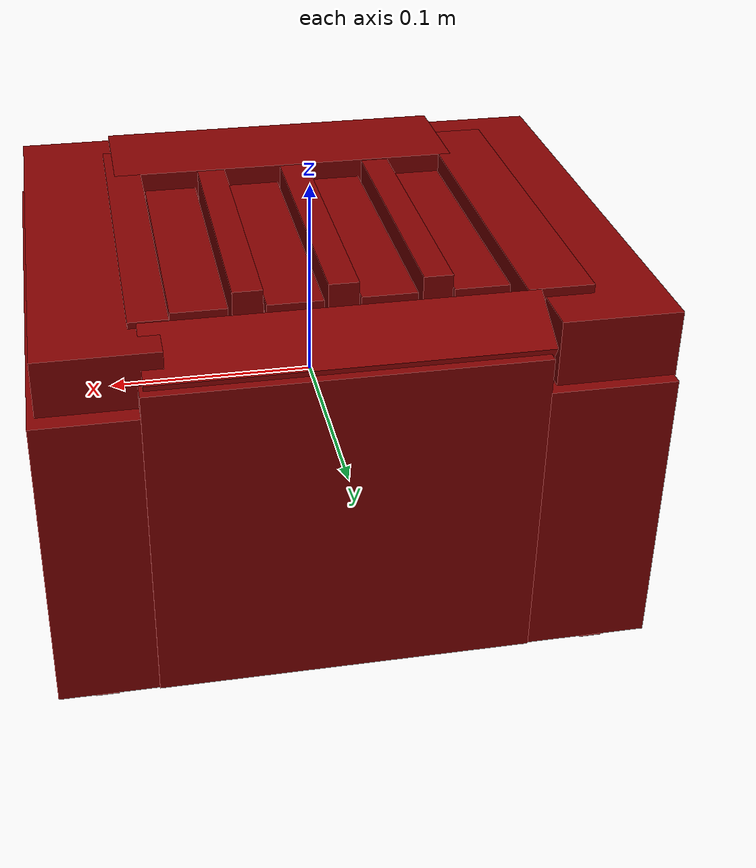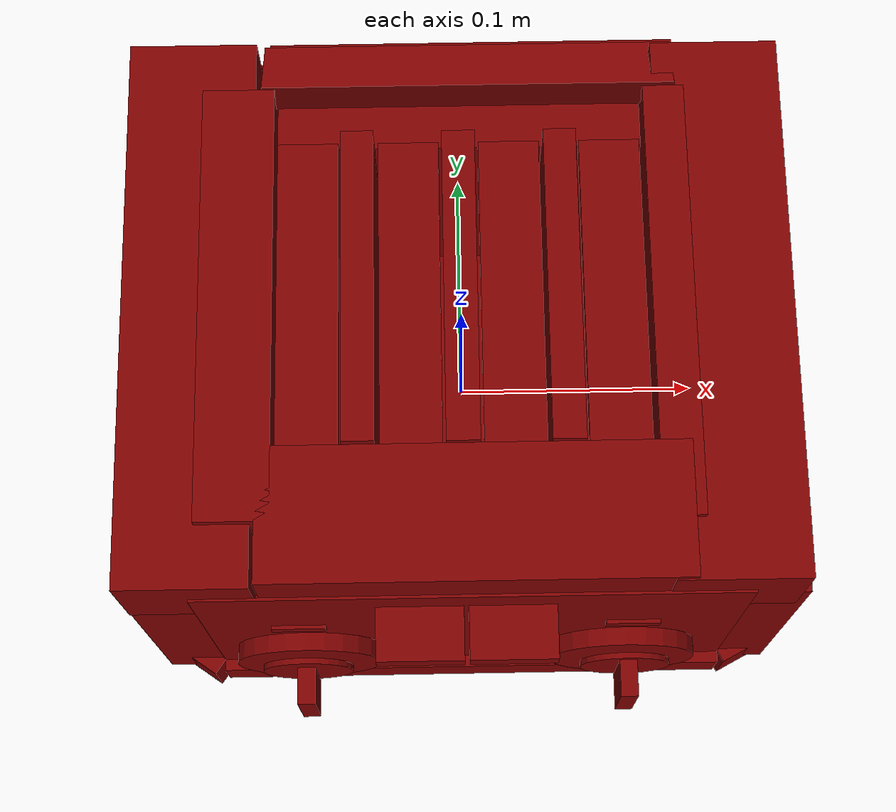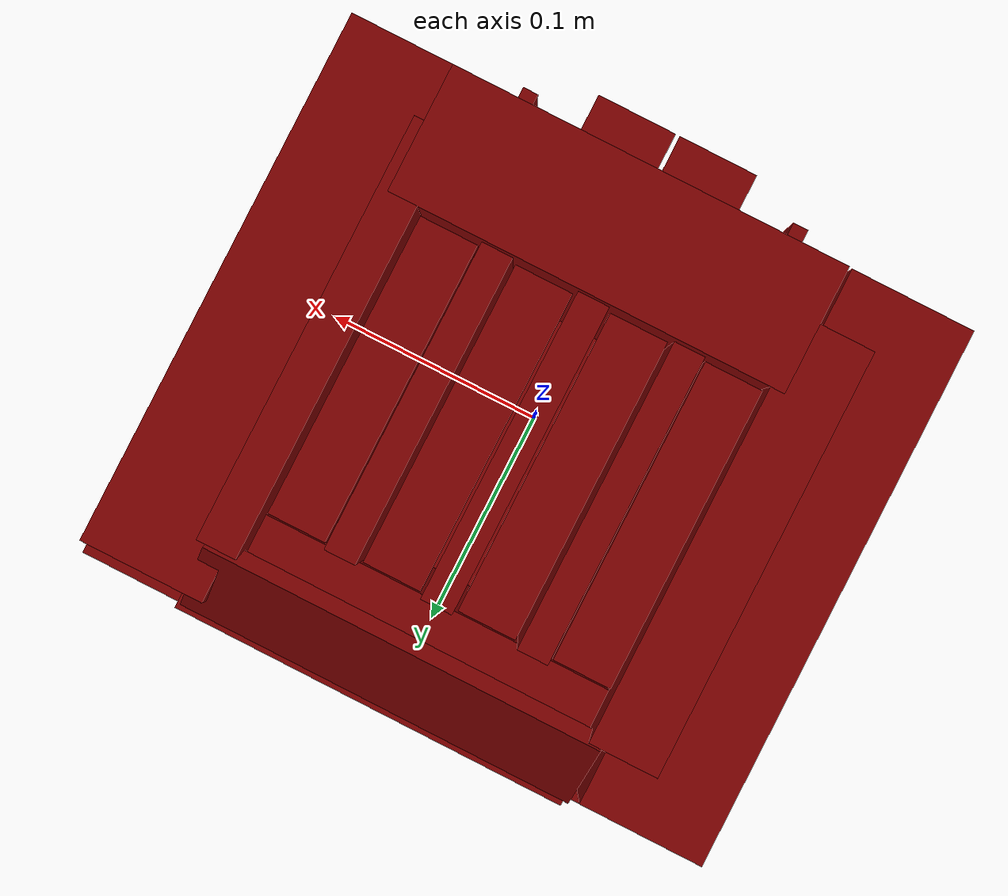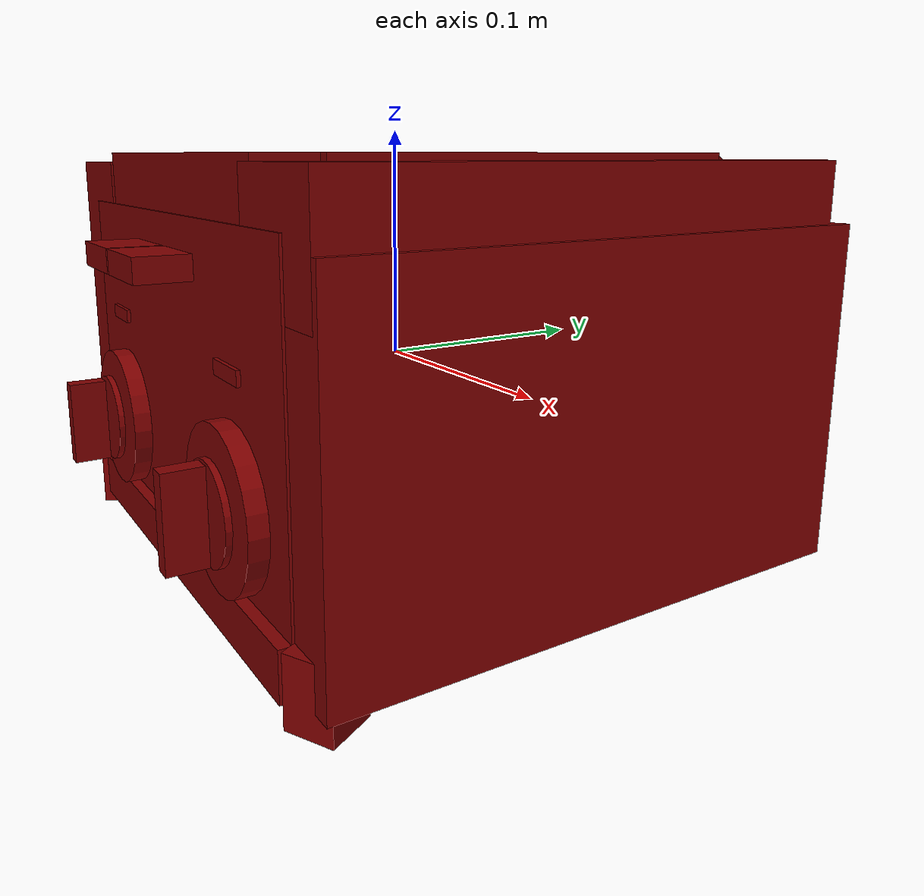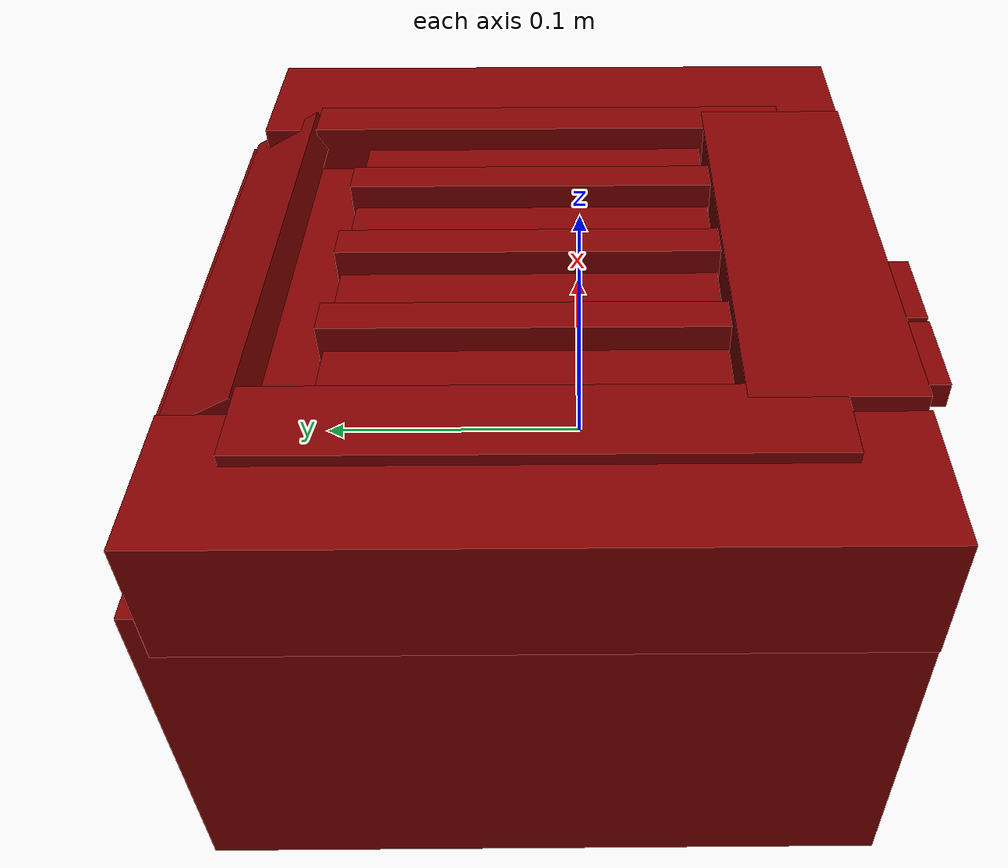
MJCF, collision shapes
<?xml version='1.0' encoding='UTF-8'?>
<mujoco model="model">
  <compiler angle="radian"/>
  <asset>
    <mesh file="visuals/Body001.obj" name="Body001_vis"/>
    <mesh file="visuals/Button001.obj" name="Button001_vis"/>
    <mesh file="visuals/Button002.obj" name="Button002_vis"/>
    <mesh file="visuals/Knob001.obj" name="Knob001_vis"/>
    <mesh file="visuals/Knob002.obj" name="Knob002_vis"/>
    <mesh file="visuals/Lever001.obj" name="Lever001_vis"/>
    <mesh file="visuals/Lever002.obj" name="Lever002_vis"/>
    <texture file="visuals/T_BC001.png" name="Body001_material" type="2d"/>
    <material name="Body001_material" rgba="1 1 1 1.0" texture="Body001_material" shininess="0.1" specular="4"/>
    <texture file="visuals/T_BC001.png" name="Button001_material" type="2d"/>
    <material name="Button001_material" rgba="1 1 1 1.0" texture="Button001_material" shininess="0.5" specular="0.3103448502657381"/>
    <texture file="visuals/T_BC001.png" name="Button002_material" type="2d"/>
    <material name="Button002_material" rgba="1 1 1 1.0" texture="Button002_material" shininess="0.5" specular="0.3103448502657381"/>
    <texture file="visuals/T_BC001.png" name="Knob001_material" type="2d"/>
    <material name="Knob001_material" rgba="1 1 1 1.0" texture="Knob001_material" shininess="0.5" specular="0.3103448502657381"/>
    <texture file="visuals/T_BC001.png" name="Knob002_material" type="2d"/>
    <material name="Knob002_material" rgba="1 1 1 1.0" texture="Knob002_material" shininess="0.5" specular="0.3103448502657381"/>
    <texture file="visuals/T_BC001.png" name="Lever001_material" type="2d"/>
    <material name="Lever001_material" rgba="1 1 1 1.0" texture="Lever001_material" shininess="0.5" specular="0.3103448502657381"/>
    <texture file="visuals/T_BC001.png" name="Lever002_material" type="2d"/>
    <material name="Lever002_material" rgba="1 1 1 1.0" texture="Lever002_material" shininess="0.5" specular="0.3103448502657381"/>
  </asset>
  <default>
    <default class="visual">
      <geom conaffinity="0" contype="0" group="1" type="mesh"/>
    </default>
    <default class="collision">
      <geom group="0" rgba="0.5 0 0 0.5"/>
    </default>
    <default class="spawn">
      <geom group="0" rgba="1 1 1 0.5" contype="0" conaffinity="0"/>
      <site group="0" rgba="1 1 1 0.5"/>
    </default>
    <default class="region">
      <geom group="1" conaffinity="0" contype="0" rgba="0 1 0 0"/>
    </default>
  </default>
  <worldbody>
    <body>
      <body name="object">
        <geom mesh="Body001_vis" type="mesh" solimp="0.998 0.998 0.001" solref="0.001 1" density="100" friction="0.95 0.3 0.1" class="visual" material="Body001_material"/>
        <geom class="collision" type="box" pos="0.006255 0.108724 -0.003321" size="0.0854666605591774 0.02452273480594158 0.0764225497841835" quat="1.0 0.0 0.0 0.0"/>
        <geom class="collision" type="box" pos="0.107837 0.013929 -0.008627" size="0.02884724736213684 0.11863932758569717 0.07111582159996033" quat="1.0 0.0 0.0 0.0"/>
        <geom class="collision" type="box" pos="-0.106776 0.013929 -0.011757" size="0.02884725108742714 0.11863932758569717 0.06798653304576874" quat="1.0 0.0 0.0 0.0"/>
        <geom class="collision" type="box" pos="0.003835 -0.076681 0.005424" size="0.0854666605591774 0.02743692696094513 0.08516725897789001" quat="1.0 0.0 0.0 0.0"/>
        <geom class="collision" type="box" pos="0.107151 0.009671 0.064013" size="0.026408949866890907 0.11438211053609848 0.02373332716524601" quat="1.0 0.0 0.0 0.0"/>
        <geom class="collision" type="box" pos="-0.109909 0.011014 0.062708" size="0.026408955454826355 0.11572514474391937 0.02373332716524601" quat="1.0 0.0 0.0 0.0"/>
        <geom class="collision" type="box" pos="0.041530 0.017879 0.005424" size="0.0067037236876785755 0.06621411442756653 0.08516720682382584" quat="1.0 0.0 0.0 0.0"/>
        <geom class="collision" type="box" pos="-0.000060 0.017879 0.005424" size="0.006776988040655851 0.06621409952640533 0.08516718447208405" quat="1.0 0.0 0.0 0.0"/>
        <geom class="collision" type="box" pos="-0.041541 0.018283 0.005424" size="0.006610519252717495 0.06621408462524414 0.08516716957092285" quat="1.0 0.0 0.0 0.0"/>
        <geom class="collision" type="box" pos="-0.090316 0.012181 0.005424" size="0.014785397797822952 0.0915321335196495 0.08516723662614822" quat="1.0 0.0 0.0 0.0"/>
        <geom class="collision" type="box" pos="0.084949 0.011611 0.005424" size="0.008499868214130402 0.09138963371515274 0.08516721427440643" quat="1.0 0.0 0.0 0.0"/>
        <geom class="collision" type="box" pos="0.002623 -0.105129 -0.004841" size="0.11175848543643951 0.0006240600487217307 0.07258578389883041" quat="1.0 0.0 0.0 0.0"/>
        <geom class="collision" type="cylinder" pos="-0.068207 -0.109353 -0.031329" size="0.03150606155395508 0.004073598887771368" quat="0.7071067094802856 -0.7071068286895752 -1.5700929612083792e-16 -2.2148510003422914e-23"/>
        <geom class="collision" type="cylinder" pos="0.068207 -0.109353 -0.031329" size="0.03150606155395508 0.004073598422110081" quat="0.7071067094802856 -0.7071068286895752 -1.5700929612083792e-16 -2.2148510003422914e-23"/>
        <geom class="collision" type="box" pos="0.002623 -0.107364 -0.072800" size="0.11175848543643951 0.003323450917378068 0.009811208583414555" quat="1.0 0.0 0.0 0.0"/>
        <geom class="collision" type="box" pos="0.114801 -0.089833 -0.085152" size="0.005228901747614145 0.005228901747614145 0.005228901747614145" quat="1.0 0.0 0.0 0.0"/>
        <geom class="collision" type="box" pos="0.114914 0.116264 -0.085152" size="0.005228901747614145 0.005228901747614145 0.005228901747614145" quat="1.0 0.0 0.0 0.0"/>
        <geom class="collision" type="box" pos="-0.114916 0.116460 -0.085152" size="0.005228901747614145 0.005228901747614145 0.005228901747614145" quat="1.0 0.0 0.0 0.0"/>
        <geom class="collision" type="box" pos="-0.114959 -0.089610 -0.085152" size="0.005228901747614145 0.005228901747614145 0.005228901747614145" quat="1.0 0.0 0.0 0.0"/>
        <geom class="collision" type="box" pos="0.121155 -0.097093 -0.076025" size="0.009820248000323772 0.010178281925618649 0.013664747588336468" quat="0.9709180593490601 0.0 0.0 0.23941203951835632"/>
        <geom class="collision" type="box" pos="-0.116112 -0.098516 -0.075273" size="0.009820248000323772 0.010178281925618649 0.013664747588336468" quat="0.887191116809845 0.0 0.0 0.46140214800834656"/>
        <geom class="collision" type="box" pos="0.004425 0.114997 0.078983" size="0.014891832135617733 0.0854666605591774 0.005240754224359989" quat="0.6846925616264343 -0.17662422358989716 -0.17662426829338074 -0.6846925616264343"/>
        <geom class="collision" type="box" pos="0.006255 0.016997 -0.064273" size="0.0854666605591774 0.06809078902006149 0.015469956211745739" quat="1.0 0.0 0.0 0.0"/>
        <body name="Button001">
          <joint axis="0.0 1.0 0.0" pos="-0.069653 -0.104732 0.017610" limited="true" name="Button001_joint" range="0.0 0.003" type="slide" damping="1" frictionloss="1" armature=".01" stiffness="0.05"/>
          <geom mesh="Button001_vis" type="mesh" solimp="0.998 0.998 0.001" solref="0.001 1" density="100" friction="0.95 0.3 0.1" class="visual" material="Button001_material"/>
          <geom class="collision" type="box" pos="-0.069504 -0.107351 0.017608" size="0.011258109472692013 0.0007916752365417778 0.0029157029930502176" quat="1.0 0.0 0.0 0.0"/>
        </body>
        <body name="Button002">
          <joint axis="0.0 1.0 0.0" pos="0.069653 -0.104732 0.017610" limited="true" name="Button002_joint" range="0.0 0.003" type="slide" damping="1" frictionloss="1" armature=".01" stiffness="0.05"/>
          <geom mesh="Button002_vis" type="mesh" solimp="0.998 0.998 0.001" solref="0.001 1" density="100" friction="0.95 0.3 0.1" class="visual" material="Button002_material"/>
          <geom class="collision" type="box" pos="0.069504 -0.107351 0.017608" size="0.011258109472692013 0.0007916752365417778 0.0029157029930502176" quat="1.0 0.0 0.0 0.0"/>
        </body>
        <body name="Knob001">
          <joint axis="0.0 1.0 0.0" pos="-0.068502 -0.124060 -0.031425" limited="true" name="Knob001_joint" range="0.0 5.235987755982989" type="hinge" damping="0.05" armature="0.001"/>
          <geom mesh="Knob001_vis" type="mesh" solimp="0.998 0.998 0.001" solref="0.001 1" density="100" friction="0.95 0.3 0.1" class="visual" material="Knob001_material"/>
          <geom class="collision" type="cylinder" pos="-0.068913 -0.115791 -0.031423" size="0.019683368504047394 0.0012701405212283134" quat="0.7071067094802856 0.7071068286895752 0.0 0.0"/>
          <geom class="collision" type="box" pos="-0.068520 -0.126284 -0.031378" size="0.0037869771476835012 0.007823741994798183 0.018524248152971268" quat="1.0 0.0 0.0 0.0"/>
        </body>
        <body name="Knob002">
          <joint axis="0.0 1.0 0.0" pos="0.069634 -0.124060 -0.031425" limited="true" name="Knob002_joint" range="0.0 5.235987755982989" type="hinge" damping="0.05" armature="0.001"/>
          <geom mesh="Knob002_vis" type="mesh" solimp="0.998 0.998 0.001" solref="0.001 1" density="100" friction="0.95 0.3 0.1" class="visual" material="Knob002_material"/>
          <geom class="collision" type="box" pos="0.069644 -0.125354 -0.031378" size="0.0037683784030377865 0.007823741994798183 0.018524248152971268" quat="1.0 0.0 0.0 0.0"/>
          <geom class="collision" type="cylinder" pos="0.069463 -0.115791 -0.031423" size="0.019547658041119576 0.001261383411474526" quat="0.7071067094802856 0.7071068286895752 0.0 0.0"/>
        </body>
        <body name="Lever001">
          <joint axis="0.0 0.0 -1.0" pos="-0.018460 -0.107108 0.049484" limited="true" name="Lever001_joint" range="0.0 0.08" type="slide" damping="1" frictionloss="-0.1" armature=".01" stiffness="1" springref="-0.6"/>
          <geom mesh="Lever001_vis" type="mesh" solimp="0.998 0.998 0.001" solref="0.001 1" density="100" friction="0.95 0.3 0.1" class="visual" material="Lever001_material"/>
          <geom class="collision" type="box" pos="-0.062139 0.017548 0.078916" size="0.012500004842877388 0.06499988585710526 0.003454431425780058" quat="1.0 0.0 0.0 0.0" name="sideL_slotL_floor"/>
          <geom class="collision" type="box" pos="-0.020697 0.017548 0.078916" size="0.01250002533197403 0.06499989330768585 0.003454431425780058" quat="1.0 0.0 0.0 0.0" name="sideL_slotR_floor"/>
          <geom class="collision" type="box" pos="-0.018512 -0.117359 0.049744" size="0.017650842666625977 0.01094627846032381 0.005003620870411396" quat="1.0 0.0 0.0 0.0" name="sideL_lever_knob"/>
        </body>
        <body name="Lever002">
          <joint axis="0.0 0.0 -1.0" pos="0.018460 -0.107109 0.049484" limited="true" name="Lever002_joint" range="0.0 0.08" type="slide" damping="1" frictionloss="-0.1" armature=".01" stiffness="1" springref="-0.6"/>
          <geom mesh="Lever002_vis" type="mesh" solimp="0.998 0.998 0.001" solref="0.001 1" density="100" friction="0.95 0.3 0.1" class="visual" material="Lever002_material"/>
          <geom class="collision" type="box" pos="0.020744 0.017548 0.078916" size="0.012500024400651455 0.06500009447336197 0.0034544402733445168" quat="1.0 0.0 0.0 0.0" name="sideR_slotL_floor"/>
          <geom class="collision" type="box" pos="0.062326 0.017548 0.078916" size="0.012500022538006306 0.06499999761581421 0.003454431425780058" quat="1.0 0.0 0.0 0.0" name="sideR_slotR_floor"/>
          <geom class="collision" type="box" pos="0.018795 -0.117359 0.049744" size="0.017650842666625977 0.01094627846032381 0.005003620870411396" quat="1.0 0.0 0.0 0.0" name="sideR_lever_knob"/>
        </body>
        <geom class="region" name="reg_main" type="box" pos="0.0 0.013626500000000007 -3.0000000000030003e-06" size="0.136085 0.1204065 0.0906"/>
      </body>
    </body>
  </worldbody>
  <actuator>
    <motor name="Button001_joint_actuator" joint="Button001_joint" gear="0.5"/>
    <motor name="Button002_joint_actuator" joint="Button002_joint" gear="0.5"/>
    <motor name="Knob001_joint_actuator" joint="Knob001_joint" gear="5"/>
    <motor name="Knob002_joint_actuator" joint="Knob002_joint" gear="5"/>
    <motor name="Lever001_joint_actuator" joint="Lever001_joint" gear="2"/>
    <motor name="Lever002_joint_actuator" joint="Lever002_joint" gear="2"/>
  </actuator>
</mujoco>
